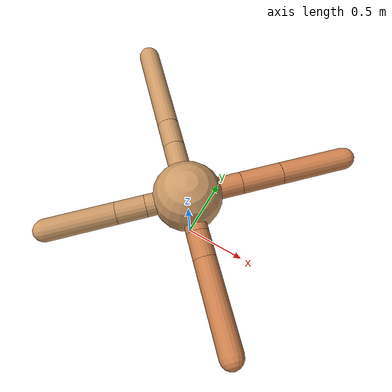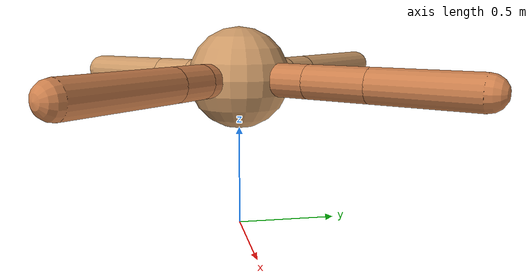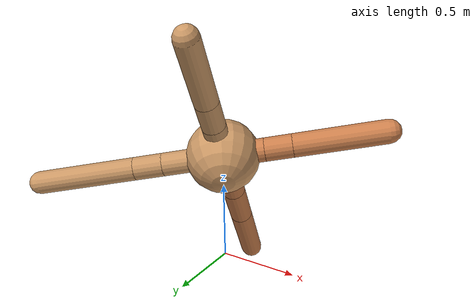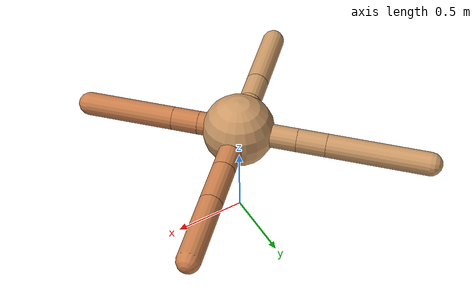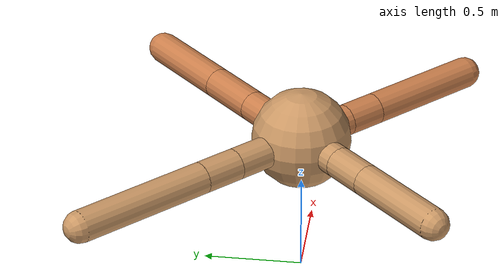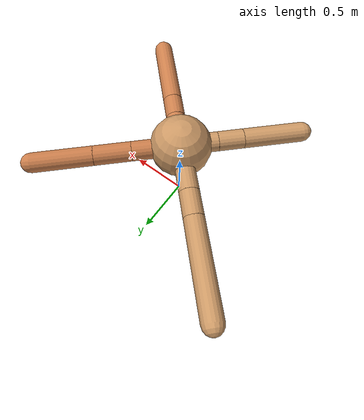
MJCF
<mujoco model="ant">
  <compiler angle="degree" coordinate="local" inertiafromgeom="true" />
  <option integrator="RK4" timestep="0.01" />
  <custom>
    <numeric data="0.0 0.0 0.55 1.0 0.0 0.0 0.0 0.0 1.0 0.0 -1.0 0.0 -1.0 0.0 1.0" name="init_qpos" />
  </custom>
  <default>
    <joint armature="1" damping="1" limited="true" />
    <geom conaffinity="0" condim="3" density="5.0" friction="1.5 0.1 0.1" margin="0.01" rgba="0.8 0.6 0.4 1" />
  </default>
  <worldbody>
    <body name="torso" pos="0 0 0.75">
      <geom name="torso_geom" pos="0 0 0" size="0.25" type="sphere" />

      <body name="front_left_leg" pos="0 0 0">
        <geom fromto="0.0 0.0 0.0 0.2787182731204143 0.2787182731204143 0.0" name="aux_1_geom" size="0.08" type="capsule" rgba=".8 .5 .3 1" />
        <body name="aux_1" pos="0.2787182731204143 0.2787182731204143 0.0">
          <joint axis="0 0 1" name="hip_1" pos="0.0 0.0 0.0" range="-40 40" type="hinge" />
          <geom fromto="0.0 0.0 0.0 0.21239817421307094 0.21239817421307094 0.0" name="left_leg_geom" size="0.08" type="capsule" rgba=".8 .5 .3 1" />
          <body pos="0.21239817421307094 0.21239817421307094 0.0" name="front_left_foot">
            <joint axis="-1 1 0" name="ankle_1" pos="0.0 0.0 0.0" range="30 100" type="hinge" />
            <geom fromto="0.0 0.0 0.0 0.34271485757563647 0.34271485757563647 0.0" name="left_ankle_geom" size="0.08" type="capsule" rgba=".8 .5 .3 1" />
          </body>
        </body>
      </body>
      <body name="front_right_leg" pos="0 0 0">
        <geom fromto="0.0 0.0 0.0 -0.2919183233817208 0.2919183233817208 0.0" name="aux_2_geom" size="0.08" type="capsule" />
        <body name="aux_2" pos="-0.2919183233817208 0.2919183233817208 0.0">
          <joint axis="0 0 1" name="hip_2" pos="0.0 0.0 0.0" range="-40 40" type="hinge" />
          <geom fromto="0.0 0.0 0.0 -0.1433088180683239 0.1433088180683239 0.0" name="right_leg_geom" size="0.08" type="capsule" />
          <body pos="-0.1433088180683239 0.1433088180683239 0.0" name="front_right_foot">
            <joint axis="1 1 0" name="ankle_2" pos="0.0 0.0 0.0" range="-100 -30" type="hinge" />
            <geom fromto="0.0 0.0 0.0 -0.496554502070347 0.496554502070347 0.0" name="right_ankle_geom" size="0.08" type="capsule" />
          </body>
        </body>
      </body>
      <body name="left_back_leg" pos="0 0 0">
        <geom fromto="0.0 0.0 0.0 -0.2110857384454192 -0.2110857384454192 0.0" name="aux_3_geom" size="0.08" type="capsule" />
        <body name="aux_3" pos="-0.2110857384454192 -0.2110857384454192 0.0">
          <joint axis="0 0 1" name="hip_3" pos="0.0 0.0 0.0" range="-40 40" type="hinge" />
          <geom fromto="0.0 0.0 0.0 -0.14730090345819818 -0.14730090345819818 0.0" name="back_leg_geom" size="0.08" type="capsule" />
          <body pos="-0.14730090345819818 -0.14730090345819818 0.0" name="left_back_foot">
            <joint axis="-1 1 0" name="ankle_3" pos="0.0 0.0 0.0" range="-100 -30" type="hinge" />
            <geom fromto="0.0 0.0 0.0 -0.3454055656939211 -0.3454055656939211 0.0" name="third_ankle_geom" size="0.08" type="capsule" />
          </body>
        </body>
      </body>
      <body name="right_back_leg" pos="0 0 0">
        <geom fromto="0.0 0.0 0.0 0.2 -0.2 0.0" name="aux_4_geom" size="0.08" type="capsule" rgba=".8 .5 .3 1" />
        <body name="aux_4" pos="0.2 -0.2 0.0">
          <joint axis="0 0 1" name="hip_4" pos="0.0 0.0 0.0" range="-40 40" type="hinge" />
          <geom fromto="0.0 0.0 0.0 0.1304321414841896 -0.1304321414841896 0.0" name="rightback_leg_geom" size="0.08" type="capsule" rgba=".8 .5 .3 1" />
          <body pos="0.1304321414841896 -0.1304321414841896 0.0" name="right_back_foot">
            <joint axis="1 1 0" name="ankle_4" pos="0.0 0.0 0.0" range="30 100" type="hinge" />
            <geom fromto="0.0 0.0 0.0 0.4332275187507807 -0.4332275187507807 0.0" name="fourth_ankle_geom" size="0.08" type="capsule" rgba=".8 .5 .3 1" />
          </body>
        </body>
      </body>
    </body>
  </worldbody>
  <actuator>
    <motor ctrllimited="true" ctrlrange="-1.0 1.0" joint="hip_4" gear="150" />
    <motor ctrllimited="true" ctrlrange="-1.0 1.0" joint="ankle_4" gear="150" />
    <motor ctrllimited="true" ctrlrange="-1.0 1.0" joint="hip_1" gear="150" />
    <motor ctrllimited="true" ctrlrange="-1.0 1.0" joint="ankle_1" gear="150" />
    <motor ctrllimited="true" ctrlrange="-1.0 1.0" joint="hip_2" gear="150" />
    <motor ctrllimited="true" ctrlrange="-1.0 1.0" joint="ankle_2" gear="150" />
    <motor ctrllimited="true" ctrlrange="-1.0 1.0" joint="hip_3" gear="150" />
    <motor ctrllimited="true" ctrlrange="-1.0 1.0" joint="ankle_3" gear="150" />
  </actuator>
</mujoco>
